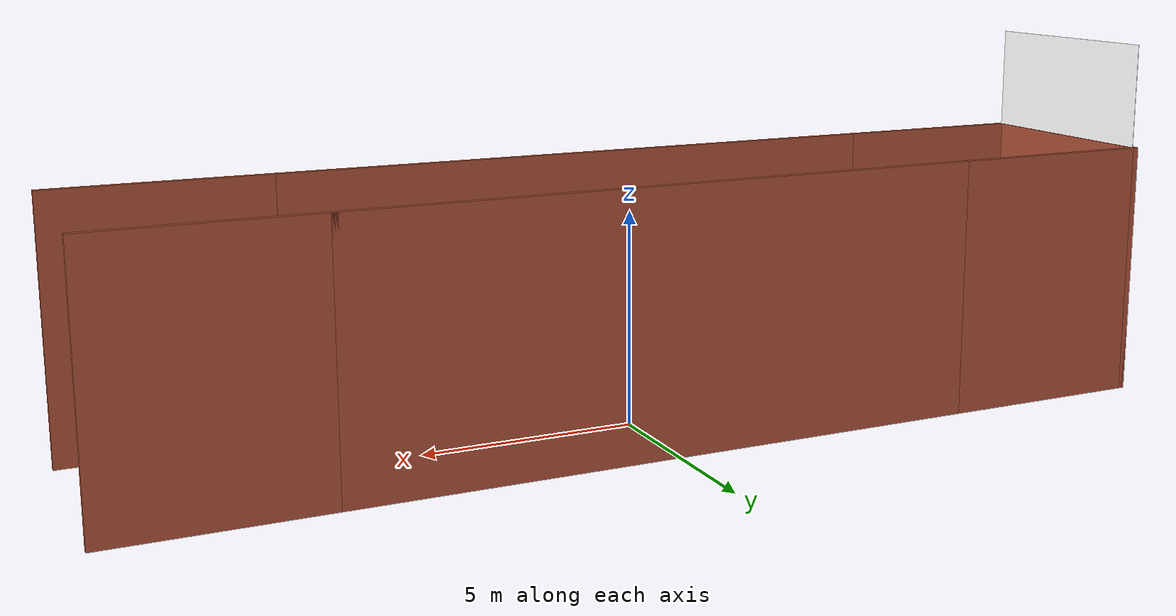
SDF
<?xml version='1.0'?>
<sdf version='1.6'>
  <model name='new_wall_flipkart'>
    <link name='Wall_1'>
      <pose frame=''>-9.85 2.5 0 0 -0 0</pose>
      <self_collide>0</self_collide>
      <enable_wind>0</enable_wind>
      <kinematic>0</kinematic>
      <visual name='Wall_1_Visual'>
        <pose frame=''>0 0 3 0 -0 0</pose>
        <geometry>
          <box>
            <size>5 0.15 6</size>
          </box>
        </geometry>
        <material>
          <script>
            <uri>file://media/materials/scripts/gazebo.material</uri>
            <name>Gazebo/Bricks</name>
          </script>
          <ambient>1 1 1 1</ambient>
          <shader type='pixel'/>
        </material>
        <meta>
          <layer>0</layer>
        </meta>
        <transparency>0</transparency>
        <cast_shadows>1</cast_shadows>
      </visual>
      <collision name='Wall_1_Collision'>
        <laser_retro>0</laser_retro>
        <max_contacts>10</max_contacts>
        <pose frame=''>0 0 3 0 -0 0</pose>
        <geometry>
          <box>
            <size>5 0.15 6</size>
          </box>
        </geometry>
        <surface>
          <friction>
            <ode>
              <mu>1</mu>
              <mu2>1</mu2>
              <fdir1>0 0 0</fdir1>
              <slip1>0</slip1>
              <slip2>0</slip2>
            </ode>
            <torsional>
              <coefficient>1</coefficient>
              <patch_radius>0</patch_radius>
              <surface_radius>0</surface_radius>
              <use_patch_radius>1</use_patch_radius>
              <ode>
                <slip>0</slip>
              </ode>
            </torsional>
          </friction>
          <bounce>
            <restitution_coefficient>0</restitution_coefficient>
            <threshold>1e+06</threshold>
          </bounce>
          <contact>
            <collide_without_contact>0</collide_without_contact>
            <collide_without_contact_bitmask>1</collide_without_contact_bitmask>
            <collide_bitmask>1</collide_bitmask>
            <ode>
              <soft_cfm>0</soft_cfm>
              <soft_erp>0.2</soft_erp>
              <kp>1e+13</kp>
              <kd>1</kd>
              <max_vel>0.01</max_vel>
              <min_depth>0</min_depth>
            </ode>
            <bullet>
              <split_impulse>1</split_impulse>
              <split_impulse_penetration_threshold>-0.01</split_impulse_penetration_threshold>
              <soft_cfm>0</soft_cfm>
              <soft_erp>0.2</soft_erp>
              <kp>1e+13</kp>
              <kd>1</kd>
            </bullet>
          </contact>
        </surface>
      </collision>
    </link>
    <link name='Wall_2'>
      <pose frame=''>-0 2.5 0 0 -0 0</pose>
      <self_collide>0</self_collide>
      <enable_wind>0</enable_wind>
      <kinematic>0</kinematic>
      <visual name='Wall_2_Visual'>
        <pose frame=''>0 0 3 0 -0 0</pose>
        <geometry>
          <box>
            <size>15 0.15 6</size>
          </box>
        </geometry>
        <material>
          <script>
            <uri>file://media/materials/scripts/gazebo.material</uri>
            <name>Gazebo/Bricks</name>
          </script>
          <ambient>1 1 1 1</ambient>
          <shader type='pixel'/>
        </material>
        <meta>
          <layer>0</layer>
        </meta>
        <transparency>0</transparency>
        <cast_shadows>1</cast_shadows>
      </visual>
      <collision name='Wall_2_Collision'>
        <laser_retro>0</laser_retro>
        <max_contacts>10</max_contacts>
        <pose frame=''>0 0 3 0 -0 0</pose>
        <geometry>
          <box>
            <size>15 0.15 6</size>
          </box>
        </geometry>
        <surface>
          <friction>
            <ode>
              <mu>1</mu>
              <mu2>1</mu2>
              <fdir1>0 0 0</fdir1>
              <slip1>0</slip1>
              <slip2>0</slip2>
            </ode>
            <torsional>
              <coefficient>1</coefficient>
              <patch_radius>0</patch_radius>
              <surface_radius>0</surface_radius>
              <use_patch_radius>1</use_patch_radius>
              <ode>
                <slip>0</slip>
              </ode>
            </torsional>
          </friction>
          <bounce>
            <restitution_coefficient>0</restitution_coefficient>
            <threshold>1e+06</threshold>
          </bounce>
          <contact>
            <collide_without_contact>0</collide_without_contact>
            <collide_without_contact_bitmask>1</collide_without_contact_bitmask>
            <collide_bitmask>1</collide_bitmask>
            <ode>
              <soft_cfm>0</soft_cfm>
              <soft_erp>0.2</soft_erp>
              <kp>1e+13</kp>
              <kd>1</kd>
              <max_vel>0.01</max_vel>
              <min_depth>0</min_depth>
            </ode>
            <bullet>
              <split_impulse>1</split_impulse>
              <split_impulse_penetration_threshold>-0.01</split_impulse_penetration_threshold>
              <soft_cfm>0</soft_cfm>
              <soft_erp>0.2</soft_erp>
              <kp>1e+13</kp>
              <kd>1</kd>
            </bullet>
          </contact>
        </surface>
      </collision>
    </link>
    <link name='Wall_3'>
      <pose frame=''>9.85 2.5 0 0 -0 0</pose>
      <self_collide>0</self_collide>
      <enable_wind>0</enable_wind>
      <kinematic>0</kinematic>
      <visual name='Wall_3_Visual'>
        <pose frame=''>0 0 3 0 -0 0</pose>
        <geometry>
          <box>
            <size>5 0.15 6</size>
          </box>
        </geometry>
        <material>
          <script>
            <uri>file://media/materials/scripts/gazebo.material</uri>
            <name>Gazebo/Bricks</name>
          </script>
          <ambient>1 1 1 1</ambient>
          <shader type='pixel'/>
        </material>
        <meta>
          <layer>0</layer>
        </meta>
        <transparency>0</transparency>
        <cast_shadows>1</cast_shadows>
      </visual>
      <collision name='Wall_3_Collision'>
        <laser_retro>0</laser_retro>
        <max_contacts>10</max_contacts>
        <pose frame=''>0 0 3 0 -0 0</pose>
        <geometry>
          <box>
            <size>5 0.15 6</size>
          </box>
        </geometry>
        <surface>
          <friction>
            <ode>
              <mu>1</mu>
              <mu2>1</mu2>
              <fdir1>0 0 0</fdir1>
              <slip1>0</slip1>
              <slip2>0</slip2>
            </ode>
            <torsional>
              <coefficient>1</coefficient>
              <patch_radius>0</patch_radius>
              <surface_radius>0</surface_radius>
              <use_patch_radius>1</use_patch_radius>
              <ode>
                <slip>0</slip>
              </ode>
            </torsional>
          </friction>
          <bounce>
            <restitution_coefficient>0</restitution_coefficient>
            <threshold>1e+06</threshold>
          </bounce>
          <contact>
            <collide_without_contact>0</collide_without_contact>
            <collide_without_contact_bitmask>1</collide_without_contact_bitmask>
            <collide_bitmask>1</collide_bitmask>
            <ode>
              <soft_cfm>0</soft_cfm>
              <soft_erp>0.2</soft_erp>
              <kp>1e+13</kp>
              <kd>1</kd>
              <max_vel>0.01</max_vel>
              <min_depth>0</min_depth>
            </ode>
            <bullet>
              <split_impulse>1</split_impulse>
              <split_impulse_penetration_threshold>-0.01</split_impulse_penetration_threshold>
              <soft_cfm>0</soft_cfm>
              <soft_erp>0.2</soft_erp>
              <kp>1e+13</kp>
              <kd>1</kd>
            </bullet>
          </contact>
        </surface>
      </collision>
    </link>
    <link name='Wall_6'>
      <pose frame=''>9.85 -2.5 0 0 -0 3.14159</pose>
      <self_collide>0</self_collide>
      <enable_wind>0</enable_wind>
      <kinematic>0</kinematic>
      <visual name='Wall_6_Visual'>
        <pose frame=''>0 0 3 0 -0 0</pose>
        <geometry>
          <box>
            <size>5 0.15 6</size>
          </box>
        </geometry>
        <material>
          <script>
            <uri>file://media/materials/scripts/gazebo.material</uri>
            <name>Gazebo/Bricks</name>
          </script>
          <ambient>1 1 1 1</ambient>
          <shader type='pixel'/>
        </material>
        <meta>
          <layer>0</layer>
        </meta>
        <transparency>0</transparency>
        <cast_shadows>1</cast_shadows>
      </visual>
      <collision name='Wall_6_Collision'>
        <laser_retro>0</laser_retro>
        <max_contacts>10</max_contacts>
        <pose frame=''>0 0 3 0 -0 0</pose>
        <geometry>
          <box>
            <size>5 0.15 6</size>
          </box>
        </geometry>
        <surface>
          <friction>
            <ode>
              <mu>1</mu>
              <mu2>1</mu2>
              <fdir1>0 0 0</fdir1>
              <slip1>0</slip1>
              <slip2>0</slip2>
            </ode>
            <torsional>
              <coefficient>1</coefficient>
              <patch_radius>0</patch_radius>
              <surface_radius>0</surface_radius>
              <use_patch_radius>1</use_patch_radius>
              <ode>
                <slip>0</slip>
              </ode>
            </torsional>
          </friction>
          <bounce>
            <restitution_coefficient>0</restitution_coefficient>
            <threshold>1e+06</threshold>
          </bounce>
          <contact>
            <collide_without_contact>0</collide_without_contact>
            <collide_without_contact_bitmask>1</collide_without_contact_bitmask>
            <collide_bitmask>1</collide_bitmask>
            <ode>
              <soft_cfm>0</soft_cfm>
              <soft_erp>0.2</soft_erp>
              <kp>1e+13</kp>
              <kd>1</kd>
              <max_vel>0.01</max_vel>
              <min_depth>0</min_depth>
            </ode>
            <bullet>
              <split_impulse>1</split_impulse>
              <split_impulse_penetration_threshold>-0.01</split_impulse_penetration_threshold>
              <soft_cfm>0</soft_cfm>
              <soft_erp>0.2</soft_erp>
              <kp>1e+13</kp>
              <kd>1</kd>
            </bullet>
          </contact>
        </surface>
      </collision>
    </link>
    <link name='Wall_7'>
      <pose frame=''>0 -2.5 0 0 -0 3.14159</pose>
      <self_collide>0</self_collide>
      <enable_wind>0</enable_wind>
      <kinematic>0</kinematic>
      <visual name='Wall_7_Visual'>
        <pose frame=''>0 0 3 0 -0 0</pose>
        <geometry>
          <box>
            <size>15 0.15 6</size>
          </box>
        </geometry>
        <material>
          <script>
            <uri>file://media/materials/scripts/gazebo.material</uri>
            <name>Gazebo/Bricks</name>
          </script>
          <ambient>1 1 1 1</ambient>
          <shader type='pixel'/>
        </material>
        <meta>
          <layer>0</layer>
        </meta>
        <transparency>0</transparency>
        <cast_shadows>1</cast_shadows>
      </visual>
      <collision name='Wall_7_Collision'>
        <laser_retro>0</laser_retro>
        <max_contacts>10</max_contacts>
        <pose frame=''>0 0 3 0 -0 0</pose>
        <geometry>
          <box>
            <size>15 0.15 6</size>
          </box>
        </geometry>
        <surface>
          <friction>
            <ode>
              <mu>1</mu>
              <mu2>1</mu2>
              <fdir1>0 0 0</fdir1>
              <slip1>0</slip1>
              <slip2>0</slip2>
            </ode>
            <torsional>
              <coefficient>1</coefficient>
              <patch_radius>0</patch_radius>
              <surface_radius>0</surface_radius>
              <use_patch_radius>1</use_patch_radius>
              <ode>
                <slip>0</slip>
              </ode>
            </torsional>
          </friction>
          <bounce>
            <restitution_coefficient>0</restitution_coefficient>
            <threshold>1e+06</threshold>
          </bounce>
          <contact>
            <collide_without_contact>0</collide_without_contact>
            <collide_without_contact_bitmask>1</collide_without_contact_bitmask>
            <collide_bitmask>1</collide_bitmask>
            <ode>
              <soft_cfm>0</soft_cfm>
              <soft_erp>0.2</soft_erp>
              <kp>1e+13</kp>
              <kd>1</kd>
              <max_vel>0.01</max_vel>
              <min_depth>0</min_depth>
            </ode>
            <bullet>
              <split_impulse>1</split_impulse>
              <split_impulse_penetration_threshold>-0.01</split_impulse_penetration_threshold>
              <soft_cfm>0</soft_cfm>
              <soft_erp>0.2</soft_erp>
              <kp>1e+13</kp>
              <kd>1</kd>
            </bullet>
          </contact>
        </surface>
      </collision>
    </link>
    <link name='Wall_8'>
      <pose frame=''>-9.85 -2.5 0 0 -0 3.14159</pose>
      <self_collide>0</self_collide>
      <enable_wind>0</enable_wind>
      <kinematic>0</kinematic>
      <visual name='Wall_8_Visual'>
        <pose frame=''>0 0 3 0 -0 0</pose>
        <geometry>
          <box>
            <size>5 0.15 6</size>
          </box>
        </geometry>
        <material>
          <script>
            <uri>file://media/materials/scripts/gazebo.material</uri>
            <name>Gazebo/Bricks</name>
          </script>
          <ambient>1 1 1 1</ambient>
          <shader type='pixel'/>
        </material>
        <meta>
          <layer>0</layer>
        </meta>
        <transparency>0</transparency>
        <cast_shadows>1</cast_shadows>
      </visual>
      <collision name='Wall_8_Collision'>
        <laser_retro>0</laser_retro>
        <max_contacts>10</max_contacts>
        <pose frame=''>0 0 3 0 -0 0</pose>
        <geometry>
          <box>
            <size>5 0.15 6</size>
          </box>
        </geometry>
        <surface>
          <friction>
            <ode>
              <mu>1</mu>
              <mu2>1</mu2>
              <fdir1>0 0 0</fdir1>
              <slip1>0</slip1>
              <slip2>0</slip2>
            </ode>
            <torsional>
              <coefficient>1</coefficient>
              <patch_radius>0</patch_radius>
              <surface_radius>0</surface_radius>
              <use_patch_radius>1</use_patch_radius>
              <ode>
                <slip>0</slip>
              </ode>
            </torsional>
          </friction>
          <bounce>
            <restitution_coefficient>0</restitution_coefficient>
            <threshold>1e+06</threshold>
          </bounce>
          <contact>
            <collide_without_contact>0</collide_without_contact>
            <collide_without_contact_bitmask>1</collide_without_contact_bitmask>
            <collide_bitmask>1</collide_bitmask>
            <ode>
              <soft_cfm>0</soft_cfm>
              <soft_erp>0.2</soft_erp>
              <kp>1e+13</kp>
              <kd>1</kd>
              <max_vel>0.01</max_vel>
              <min_depth>0</min_depth>
            </ode>
            <bullet>
              <split_impulse>1</split_impulse>
              <split_impulse_penetration_threshold>-0.01</split_impulse_penetration_threshold>
              <soft_cfm>0</soft_cfm>
              <soft_erp>0.2</soft_erp>
              <kp>1e+13</kp>
              <kd>1</kd>
            </bullet>
          </contact>
        </surface>
      </collision>
    </link>
    <link name='Wall_9'>
      <pose frame=''>-12.275 0 0 0 -0 1.5708</pose>
      <self_collide>0</self_collide>
      <enable_wind>0</enable_wind>
      <kinematic>0</kinematic>
      <visual name='Wall_9_Visual'>
        <pose frame=''>0 0 3 0 -0 0</pose>
        <geometry>
          <box>
            <size>5.15 0.15 6</size>
          </box>
        </geometry>
        <material>
          <script>
            <uri>file://media/materials/scripts/gazebo.material</uri>
            <name>Gazebo/Bricks</name>
          </script>
          <ambient>1 1 1 1</ambient>
          <shader type='pixel'/>
          <emissive>0 0 0 1</emissive>
        </material>
        <meta>
          <layer>0</layer>
        </meta>
        <transparency>0</transparency>
        <cast_shadows>1</cast_shadows>
      </visual>
      <collision name='Wall_9_Collision'>
        <laser_retro>0</laser_retro>
        <max_contacts>10</max_contacts>
        <pose frame=''>0 0 3 0 -0 0</pose>
        <geometry>
          <box>
            <size>5.15 0.15 6</size>
          </box>
        </geometry>
        <surface>
          <friction>
            <ode>
              <mu>1</mu>
              <mu2>1</mu2>
              <fdir1>0 0 0</fdir1>
              <slip1>0</slip1>
              <slip2>0</slip2>
            </ode>
            <torsional>
              <coefficient>1</coefficient>
              <patch_radius>0</patch_radius>
              <surface_radius>0</surface_radius>
              <use_patch_radius>1</use_patch_radius>
              <ode>
                <slip>0</slip>
              </ode>
            </torsional>
          </friction>
          <bounce>
            <restitution_coefficient>0</restitution_coefficient>
            <threshold>1e+06</threshold>
          </bounce>
          <contact>
            <collide_without_contact>0</collide_without_contact>
            <collide_without_contact_bitmask>1</collide_without_contact_bitmask>
            <collide_bitmask>1</collide_bitmask>
            <ode>
              <soft_cfm>0</soft_cfm>
              <soft_erp>0.2</soft_erp>
              <kp>1e+13</kp>
              <kd>1</kd>
              <max_vel>0.01</max_vel>
              <min_depth>0</min_depth>
            </ode>
            <bullet>
              <split_impulse>1</split_impulse>
              <split_impulse_penetration_threshold>-0.01</split_impulse_penetration_threshold>
              <soft_cfm>0</soft_cfm>
              <soft_erp>0.2</soft_erp>
              <kp>1e+13</kp>
              <kd>1</kd>
            </bullet>
          </contact>
        </surface>
      </collision>
    </link>
    <model name='banner'>
      <link name='link_0'>
        <inertial>
          <mass>1</mass>
          <inertia>
            <ixx>0.166667</ixx>
            <ixy>0</ixy>
            <ixz>0</ixz>
            <iyy>0.166667</iyy>
            <iyz>0</iyz>
            <izz>0.166667</izz>
          </inertia>
          <pose frame=''>0 0 0 0 -0 0</pose>
        </inertial>
        <pose frame=''>0 0 0 0 -0 0</pose>
        <gravity>1</gravity>
        <self_collide>0</self_collide>
        <kinematic>0</kinematic>
        <enable_wind>0</enable_wind>
        <visual name='visual'>
          <pose frame=''>0 0 0 0 -0 0</pose>
          <geometry>
            <box>
              <size>5 0.01 2.5</size>
            </box>
          </geometry>
          <material>
            <script>
              <uri>file://materials/scripts</uri>
              <uri>file://materials/texture/flipkart.jpg</uri>
              <name>flipkart/banner</name>
            </script>
            <shader type='pixel'>
              <normal_map>__default__</normal_map>
            </shader>
            <ambient>1 1 1 1</ambient>
            <diffuse>1 1 1 1</diffuse>
            <specular>0 0 0 1</specular>
            <emissive>0 0 0 1</emissive>
          </material>
          <transparency>0</transparency>
          <cast_shadows>1</cast_shadows>
        </visual>
        <collision name='collision'>
          <laser_retro>0</laser_retro>
          <max_contacts>10</max_contacts>
          <pose frame=''>0 0 0 0 -0 0</pose>
          <geometry>
            <box>
              <size>5 0.01 2.5</size>
            </box>
          </geometry>
          <surface>
            <friction>
              <ode>
                <mu>1</mu>
                <mu2>1</mu2>
                <fdir1>0 0 0</fdir1>
                <slip1>0</slip1>
                <slip2>0</slip2>
              </ode>
              <torsional>
                <coefficient>1</coefficient>
                <patch_radius>0</patch_radius>
                <surface_radius>0</surface_radius>
                <use_patch_radius>1</use_patch_radius>
                <ode>
                  <slip>0</slip>
                </ode>
              </torsional>
            </friction>
            <bounce>
              <restitution_coefficient>0</restitution_coefficient>
              <threshold>1e+06</threshold>
            </bounce>
            <contact>
              <collide_without_contact>0</collide_without_contact>
              <collide_without_contact_bitmask>1</collide_without_contact_bitmask>
              <collide_bitmask>1</collide_bitmask>
              <ode>
                <soft_cfm>0</soft_cfm>
                <soft_erp>0.2</soft_erp>
                <kp>1e+13</kp>
                <kd>1</kd>
                <max_vel>0.01</max_vel>
                <min_depth>0</min_depth>
              </ode>
              <bullet>
                <split_impulse>1</split_impulse>
                <split_impulse_penetration_threshold>-0.01</split_impulse_penetration_threshold>
                <soft_cfm>0</soft_cfm>
                <soft_erp>0.2</soft_erp>
                <kp>1e+13</kp>
                <kd>1</kd>
              </bullet>
            </contact>
          </surface>
        </collision>
      </link>
      <static>0</static>
      <allow_auto_disable>1</allow_auto_disable>
      <pose frame=''>-12.2337 0.008693 7.2081 0 -0 1.57021</pose>
    </model>
    <joint name='link_0_JOINT_0' type='fixed'>
      <parent>banner::link_0</parent>
      <child>Wall_9</child>
      <pose frame=''>0 0 0 0 -0 0</pose>
      <physics>
        <ode>
          <limit>
            <cfm>0</cfm>
            <erp>0.2</erp>
          </limit>
          <suspension>
            <cfm>0</cfm>
            <erp>0.2</erp>
          </suspension>
        </ode>
      </physics>
    </joint>
    <static>1</static>
    <allow_auto_disable>1</allow_auto_disable>
  </model>
</sdf>
